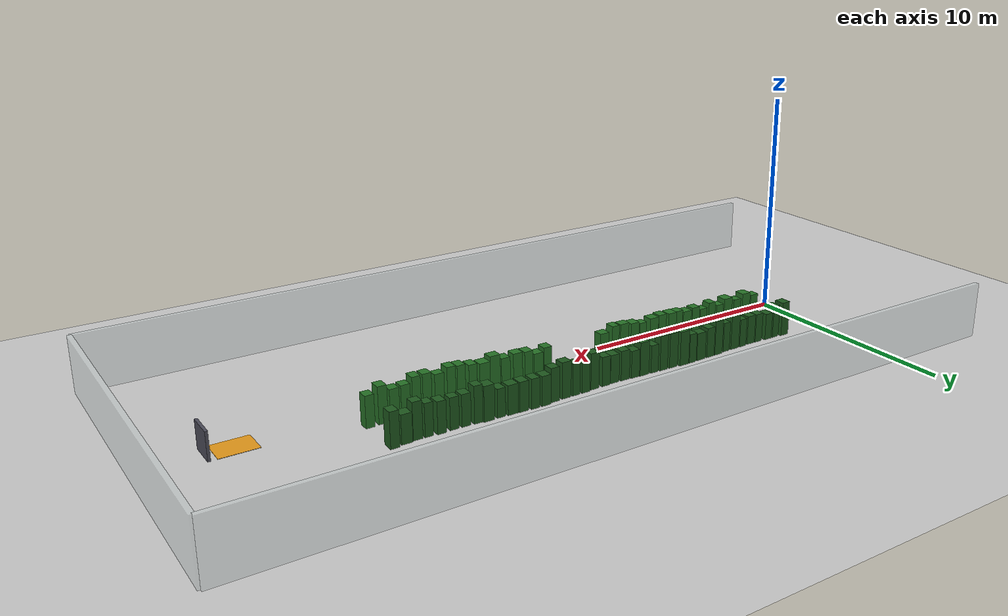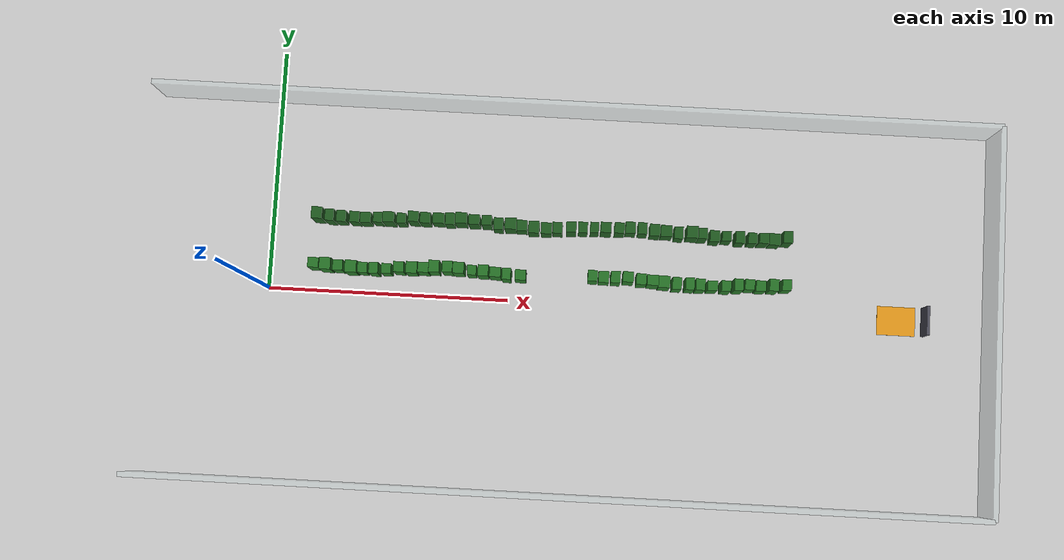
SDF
<sdf version="1.6">
 <world name="default">
  <include><uri>model://ground_plane</uri></include>
  <include><uri>model://sun</uri></include>
  <model name="crop_row_2">
   <static>true</static>
   <link name="row">
    <collision name="c0">
     <pose>1.967 1.024 0.651 0 0 0</pose>
     <geometry><box><size>0.446 0.407 1.302</size></box></geometry>
    </collision>
    <visual name="v0">
     <pose>1.967 1.024 0.651 0 0 0</pose>
     <geometry><box><size>0.446 0.407 1.302</size></box></geometry>
     <material><ambient>0.15 0.45 0.15 1</ambient><diffuse>0.15 0.45 0.15 1</diffuse></material>
    </visual>
    <collision name="c1">
     <pose>2.479 0.996 0.734 0 0 0</pose>
     <geometry><box><size>0.463 0.484 1.468</size></box></geometry>
    </collision>
    <visual name="v1">
     <pose>2.479 0.996 0.734 0 0 0</pose>
     <geometry><box><size>0.463 0.484 1.468</size></box></geometry>
     <material><ambient>0.15 0.45 0.15 1</ambient><diffuse>0.15 0.45 0.15 1</diffuse></material>
    </visual>
    <collision name="c2">
     <pose>2.981 0.973 0.632 0 0 0</pose>
     <geometry><box><size>0.410 0.429 1.263</size></box></geometry>
    </collision>
    <visual name="v2">
     <pose>2.981 0.973 0.632 0 0 0</pose>
     <geometry><box><size>0.410 0.429 1.263</size></box></geometry>
     <material><ambient>0.15 0.45 0.15 1</ambient><diffuse>0.15 0.45 0.15 1</diffuse></material>
    </visual>
    <collision name="c3">
     <pose>3.537 0.938 0.709 0 0 0</pose>
     <geometry><box><size>0.476 0.496 1.419</size></box></geometry>
    </collision>
    <visual name="v3">
     <pose>3.537 0.938 0.709 0 0 0</pose>
     <geometry><box><size>0.476 0.496 1.419</size></box></geometry>
     <material><ambient>0.15 0.45 0.15 1</ambient><diffuse>0.15 0.45 0.15 1</diffuse></material>
    </visual>
    <collision name="c4">
     <pose>3.998 0.938 0.600 0 0 0</pose>
     <geometry><box><size>0.396 0.431 1.200</size></box></geometry>
    </collision>
    <visual name="v4">
     <pose>3.998 0.938 0.600 0 0 0</pose>
     <geometry><box><size>0.396 0.431 1.200</size></box></geometry>
     <material><ambient>0.15 0.45 0.15 1</ambient><diffuse>0.15 0.45 0.15 1</diffuse></material>
    </visual>
    <collision name="c5">
     <pose>4.481 0.922 0.701 0 0 0</pose>
     <geometry><box><size>0.376 0.450 1.402</size></box></geometry>
    </collision>
    <visual name="v5">
     <pose>4.481 0.922 0.701 0 0 0</pose>
     <geometry><box><size>0.376 0.450 1.402</size></box></geometry>
     <material><ambient>0.15 0.45 0.15 1</ambient><diffuse>0.15 0.45 0.15 1</diffuse></material>
    </visual>
    <collision name="c6">
     <pose>4.984 0.945 0.608 0 0 0</pose>
     <geometry><box><size>0.402 0.409 1.217</size></box></geometry>
    </collision>
    <visual name="v6">
     <pose>4.984 0.945 0.608 0 0 0</pose>
     <geometry><box><size>0.402 0.409 1.217</size></box></geometry>
     <material><ambient>0.15 0.45 0.15 1</ambient><diffuse>0.15 0.45 0.15 1</diffuse></material>
    </visual>
    <collision name="c7">
     <pose>5.513 1.021 0.706 0 0 0</pose>
     <geometry><box><size>0.426 0.423 1.412</size></box></geometry>
    </collision>
    <visual name="v7">
     <pose>5.513 1.021 0.706 0 0 0</pose>
     <geometry><box><size>0.426 0.423 1.412</size></box></geometry>
     <material><ambient>0.15 0.45 0.15 1</ambient><diffuse>0.15 0.45 0.15 1</diffuse></material>
    </visual>
    <collision name="c8">
     <pose>6.039 1.031 0.678 0 0 0</pose>
     <geometry><box><size>0.464 0.472 1.356</size></box></geometry>
    </collision>
    <visual name="v8">
     <pose>6.039 1.031 0.678 0 0 0</pose>
     <geometry><box><size>0.464 0.472 1.356</size></box></geometry>
     <material><ambient>0.15 0.45 0.15 1</ambient><diffuse>0.15 0.45 0.15 1</diffuse></material>
    </visual>
    <collision name="c9">
     <pose>6.527 1.046 0.729 0 0 0</pose>
     <geometry><box><size>0.444 0.415 1.457</size></box></geometry>
    </collision>
    <visual name="v9">
     <pose>6.527 1.046 0.729 0 0 0</pose>
     <geometry><box><size>0.444 0.415 1.457</size></box></geometry>
     <material><ambient>0.15 0.45 0.15 1</ambient><diffuse>0.15 0.45 0.15 1</diffuse></material>
    </visual>
    <collision name="c10">
     <pose>6.971 1.115 0.747 0 0 0</pose>
     <geometry><box><size>0.432 0.489 1.494</size></box></geometry>
    </collision>
    <visual name="v10">
     <pose>6.971 1.115 0.747 0 0 0</pose>
     <geometry><box><size>0.432 0.489 1.494</size></box></geometry>
     <material><ambient>0.15 0.45 0.15 1</ambient><diffuse>0.15 0.45 0.15 1</diffuse></material>
    </visual>
    <collision name="c11">
     <pose>7.526 1.123 0.767 0 0 0</pose>
     <geometry><box><size>0.416 0.452 1.534</size></box></geometry>
    </collision>
    <visual name="v11">
     <pose>7.526 1.123 0.767 0 0 0</pose>
     <geometry><box><size>0.416 0.452 1.534</size></box></geometry>
     <material><ambient>0.15 0.45 0.15 1</ambient><diffuse>0.15 0.45 0.15 1</diffuse></material>
    </visual>
    <collision name="c12">
     <pose>7.978 1.109 0.737 0 0 0</pose>
     <geometry><box><size>0.466 0.458 1.473</size></box></geometry>
    </collision>
    <visual name="v12">
     <pose>7.978 1.109 0.737 0 0 0</pose>
     <geometry><box><size>0.466 0.458 1.473</size></box></geometry>
     <material><ambient>0.15 0.45 0.15 1</ambient><diffuse>0.15 0.45 0.15 1</diffuse></material>
    </visual>
    <collision name="c13">
     <pose>8.527 1.053 0.672 0 0 0</pose>
     <geometry><box><size>0.367 0.403 1.344</size></box></geometry>
    </collision>
    <visual name="v13">
     <pose>8.527 1.053 0.672 0 0 0</pose>
     <geometry><box><size>0.367 0.403 1.344</size></box></geometry>
     <material><ambient>0.15 0.45 0.15 1</ambient><diffuse>0.15 0.45 0.15 1</diffuse></material>
    </visual>
    <collision name="c14">
     <pose>8.999 1.055 0.725 0 0 0</pose>
     <geometry><box><size>0.432 0.456 1.450</size></box></geometry>
    </collision>
    <visual name="v14">
     <pose>8.999 1.055 0.725 0 0 0</pose>
     <geometry><box><size>0.432 0.456 1.450</size></box></geometry>
     <material><ambient>0.15 0.45 0.15 1</ambient><diffuse>0.15 0.45 0.15 1</diffuse></material>
    </visual>
    <collision name="c15">
     <pose>9.503 1.009 0.750 0 0 0</pose>
     <geometry><box><size>0.454 0.400 1.499</size></box></geometry>
    </collision>
    <visual name="v15">
     <pose>9.503 1.009 0.750 0 0 0</pose>
     <geometry><box><size>0.454 0.400 1.499</size></box></geometry>
     <material><ambient>0.15 0.45 0.15 1</ambient><diffuse>0.15 0.45 0.15 1</diffuse></material>
    </visual>
    <collision name="c16">
     <pose>9.966 0.962 0.747 0 0 0</pose>
     <geometry><box><size>0.359 0.466 1.495</size></box></geometry>
    </collision>
    <visual name="v16">
     <pose>9.966 0.962 0.747 0 0 0</pose>
     <geometry><box><size>0.359 0.466 1.495</size></box></geometry>
     <material><ambient>0.15 0.45 0.15 1</ambient><diffuse>0.15 0.45 0.15 1</diffuse></material>
    </visual>
    <collision name="c17">
     <pose>10.538 0.968 0.641 0 0 0</pose>
     <geometry><box><size>0.445 0.427 1.282</size></box></geometry>
    </collision>
    <visual name="v17">
     <pose>10.538 0.968 0.641 0 0 0</pose>
     <geometry><box><size>0.445 0.427 1.282</size></box></geometry>
     <material><ambient>0.15 0.45 0.15 1</ambient><diffuse>0.15 0.45 0.15 1</diffuse></material>
    </visual>
    <collision name="c18">
     <pose>13.521 1.085 0.696 0 0 0</pose>
     <geometry><box><size>0.400 0.449 1.392</size></box></geometry>
    </collision>
    <visual name="v18">
     <pose>13.521 1.085 0.696 0 0 0</pose>
     <geometry><box><size>0.400 0.449 1.392</size></box></geometry>
     <material><ambient>0.15 0.45 0.15 1</ambient><diffuse>0.15 0.45 0.15 1</diffuse></material>
    </visual>
    <collision name="c19">
     <pose>13.980 1.075 0.615 0 0 0</pose>
     <geometry><box><size>0.434 0.462 1.231</size></box></geometry>
    </collision>
    <visual name="v19">
     <pose>13.980 1.075 0.615 0 0 0</pose>
     <geometry><box><size>0.434 0.462 1.231</size></box></geometry>
     <material><ambient>0.15 0.45 0.15 1</ambient><diffuse>0.15 0.45 0.15 1</diffuse></material>
    </visual>
    <collision name="c20">
     <pose>14.465 1.076 0.714 0 0 0</pose>
     <geometry><box><size>0.390 0.474 1.427</size></box></geometry>
    </collision>
    <visual name="v20">
     <pose>14.465 1.076 0.714 0 0 0</pose>
     <geometry><box><size>0.390 0.474 1.427</size></box></geometry>
     <material><ambient>0.15 0.45 0.15 1</ambient><diffuse>0.15 0.45 0.15 1</diffuse></material>
    </visual>
    <collision name="c21">
     <pose>14.983 1.108 0.738 0 0 0</pose>
     <geometry><box><size>0.437 0.427 1.477</size></box></geometry>
    </collision>
    <visual name="v21">
     <pose>14.983 1.108 0.738 0 0 0</pose>
     <geometry><box><size>0.437 0.427 1.477</size></box></geometry>
     <material><ambient>0.15 0.45 0.15 1</ambient><diffuse>0.15 0.45 0.15 1</diffuse></material>
    </visual>
    <collision name="c22">
     <pose>15.531 1.053 0.693 0 0 0</pose>
     <geometry><box><size>0.410 0.452 1.387</size></box></geometry>
    </collision>
    <visual name="v22">
     <pose>15.531 1.053 0.693 0 0 0</pose>
     <geometry><box><size>0.410 0.452 1.387</size></box></geometry>
     <material><ambient>0.15 0.45 0.15 1</ambient><diffuse>0.15 0.45 0.15 1</diffuse></material>
    </visual>
    <collision name="c23">
     <pose>15.997 1.016 0.787 0 0 0</pose>
     <geometry><box><size>0.477 0.420 1.575</size></box></geometry>
    </collision>
    <visual name="v23">
     <pose>15.997 1.016 0.787 0 0 0</pose>
     <geometry><box><size>0.477 0.420 1.575</size></box></geometry>
     <material><ambient>0.15 0.45 0.15 1</ambient><diffuse>0.15 0.45 0.15 1</diffuse></material>
    </visual>
    <collision name="c24">
     <pose>16.477 0.995 0.690 0 0 0</pose>
     <geometry><box><size>0.476 0.482 1.380</size></box></geometry>
    </collision>
    <visual name="v24">
     <pose>16.477 0.995 0.690 0 0 0</pose>
     <geometry><box><size>0.476 0.482 1.380</size></box></geometry>
     <material><ambient>0.15 0.45 0.15 1</ambient><diffuse>0.15 0.45 0.15 1</diffuse></material>
    </visual>
    <collision name="c25">
     <pose>17.002 0.955 0.716 0 0 0</pose>
     <geometry><box><size>0.377 0.495 1.433</size></box></geometry>
    </collision>
    <visual name="v25">
     <pose>17.002 0.955 0.716 0 0 0</pose>
     <geometry><box><size>0.377 0.495 1.433</size></box></geometry>
     <material><ambient>0.15 0.45 0.15 1</ambient><diffuse>0.15 0.45 0.15 1</diffuse></material>
    </visual>
    <collision name="c26">
     <pose>17.531 0.954 0.764 0 0 0</pose>
     <geometry><box><size>0.367 0.495 1.528</size></box></geometry>
    </collision>
    <visual name="v26">
     <pose>17.531 0.954 0.764 0 0 0</pose>
     <geometry><box><size>0.367 0.495 1.528</size></box></geometry>
     <material><ambient>0.15 0.45 0.15 1</ambient><diffuse>0.15 0.45 0.15 1</diffuse></material>
    </visual>
    <collision name="c27">
     <pose>17.962 0.944 0.780 0 0 0</pose>
     <geometry><box><size>0.380 0.470 1.559</size></box></geometry>
    </collision>
    <visual name="v27">
     <pose>17.962 0.944 0.780 0 0 0</pose>
     <geometry><box><size>0.380 0.470 1.559</size></box></geometry>
     <material><ambient>0.15 0.45 0.15 1</ambient><diffuse>0.15 0.45 0.15 1</diffuse></material>
    </visual>
    <collision name="c28">
     <pose>18.471 0.940 0.690 0 0 0</pose>
     <geometry><box><size>0.414 0.400 1.380</size></box></geometry>
    </collision>
    <visual name="v28">
     <pose>18.471 0.940 0.690 0 0 0</pose>
     <geometry><box><size>0.414 0.400 1.380</size></box></geometry>
     <material><ambient>0.15 0.45 0.15 1</ambient><diffuse>0.15 0.45 0.15 1</diffuse></material>
    </visual>
    <collision name="c29">
     <pose>19.020 0.944 0.768 0 0 0</pose>
     <geometry><box><size>0.391 0.434 1.536</size></box></geometry>
    </collision>
    <visual name="v29">
     <pose>19.020 0.944 0.768 0 0 0</pose>
     <geometry><box><size>0.391 0.434 1.536</size></box></geometry>
     <material><ambient>0.15 0.45 0.15 1</ambient><diffuse>0.15 0.45 0.15 1</diffuse></material>
    </visual>
    <collision name="c30">
     <pose>19.532 1.018 0.785 0 0 0</pose>
     <geometry><box><size>0.366 0.484 1.571</size></box></geometry>
    </collision>
    <visual name="v30">
     <pose>19.532 1.018 0.785 0 0 0</pose>
     <geometry><box><size>0.366 0.484 1.571</size></box></geometry>
     <material><ambient>0.15 0.45 0.15 1</ambient><diffuse>0.15 0.45 0.15 1</diffuse></material>
    </visual>
    <collision name="c31">
     <pose>20.007 1.071 0.679 0 0 0</pose>
     <geometry><box><size>0.398 0.429 1.357</size></box></geometry>
    </collision>
    <visual name="v31">
     <pose>20.007 1.071 0.679 0 0 0</pose>
     <geometry><box><size>0.398 0.429 1.357</size></box></geometry>
     <material><ambient>0.15 0.45 0.15 1</ambient><diffuse>0.15 0.45 0.15 1</diffuse></material>
    </visual>
    <collision name="c32">
     <pose>20.468 1.046 0.655 0 0 0</pose>
     <geometry><box><size>0.406 0.436 1.310</size></box></geometry>
    </collision>
    <visual name="v32">
     <pose>20.468 1.046 0.655 0 0 0</pose>
     <geometry><box><size>0.406 0.436 1.310</size></box></geometry>
     <material><ambient>0.15 0.45 0.15 1</ambient><diffuse>0.15 0.45 0.15 1</diffuse></material>
    </visual>
    <collision name="c33">
     <pose>20.981 1.081 0.787 0 0 0</pose>
     <geometry><box><size>0.387 0.483 1.574</size></box></geometry>
    </collision>
    <visual name="v33">
     <pose>20.981 1.081 0.787 0 0 0</pose>
     <geometry><box><size>0.387 0.483 1.574</size></box></geometry>
     <material><ambient>0.15 0.45 0.15 1</ambient><diffuse>0.15 0.45 0.15 1</diffuse></material>
    </visual>
    <collision name="c34">
     <pose>21.531 1.132 0.675 0 0 0</pose>
     <geometry><box><size>0.375 0.451 1.349</size></box></geometry>
    </collision>
    <visual name="v34">
     <pose>21.531 1.132 0.675 0 0 0</pose>
     <geometry><box><size>0.375 0.451 1.349</size></box></geometry>
     <material><ambient>0.15 0.45 0.15 1</ambient><diffuse>0.15 0.45 0.15 1</diffuse></material>
    </visual>
   </link>
  </model>
  <model name="crop_row_3">
   <static>true</static>
   <link name="row">
    <collision name="c0">
     <pose>2.004 3.068 0.783 0 0 0</pose>
     <geometry><box><size>0.432 0.481 1.565</size></box></geometry>
    </collision>
    <visual name="v0">
     <pose>2.004 3.068 0.783 0 0 0</pose>
     <geometry><box><size>0.432 0.481 1.565</size></box></geometry>
     <material><ambient>0.12 0.35 0.12 1</ambient><diffuse>0.12 0.35 0.12 1</diffuse></material>
    </visual>
    <collision name="c1">
     <pose>2.520 3.013 0.746 0 0 0</pose>
     <geometry><box><size>0.356 0.472 1.493</size></box></geometry>
    </collision>
    <visual name="v1">
     <pose>2.520 3.013 0.746 0 0 0</pose>
     <geometry><box><size>0.356 0.472 1.493</size></box></geometry>
     <material><ambient>0.12 0.35 0.12 1</ambient><diffuse>0.12 0.35 0.12 1</diffuse></material>
    </visual>
    <collision name="c2">
     <pose>2.970 3.026 0.610 0 0 0</pose>
     <geometry><box><size>0.387 0.464 1.220</size></box></geometry>
    </collision>
    <visual name="v2">
     <pose>2.970 3.026 0.610 0 0 0</pose>
     <geometry><box><size>0.387 0.464 1.220</size></box></geometry>
     <material><ambient>0.12 0.35 0.12 1</ambient><diffuse>0.12 0.35 0.12 1</diffuse></material>
    </visual>
    <collision name="c3">
     <pose>3.538 3.009 0.660 0 0 0</pose>
     <geometry><box><size>0.395 0.447 1.319</size></box></geometry>
    </collision>
    <visual name="v3">
     <pose>3.538 3.009 0.660 0 0 0</pose>
     <geometry><box><size>0.395 0.447 1.319</size></box></geometry>
     <material><ambient>0.12 0.35 0.12 1</ambient><diffuse>0.12 0.35 0.12 1</diffuse></material>
    </visual>
    <collision name="c4">
     <pose>3.992 3.006 0.660 0 0 0</pose>
     <geometry><box><size>0.435 0.426 1.320</size></box></geometry>
    </collision>
    <visual name="v4">
     <pose>3.992 3.006 0.660 0 0 0</pose>
     <geometry><box><size>0.435 0.426 1.320</size></box></geometry>
     <material><ambient>0.12 0.35 0.12 1</ambient><diffuse>0.12 0.35 0.12 1</diffuse></material>
    </visual>
    <collision name="c5">
     <pose>4.500 3.045 0.642 0 0 0</pose>
     <geometry><box><size>0.371 0.417 1.283</size></box></geometry>
    </collision>
    <visual name="v5">
     <pose>4.500 3.045 0.642 0 0 0</pose>
     <geometry><box><size>0.371 0.417 1.283</size></box></geometry>
     <material><ambient>0.12 0.35 0.12 1</ambient><diffuse>0.12 0.35 0.12 1</diffuse></material>
    </visual>
    <collision name="c6">
     <pose>4.971 3.044 0.799 0 0 0</pose>
     <geometry><box><size>0.468 0.422 1.599</size></box></geometry>
    </collision>
    <visual name="v6">
     <pose>4.971 3.044 0.799 0 0 0</pose>
     <geometry><box><size>0.468 0.422 1.599</size></box></geometry>
     <material><ambient>0.12 0.35 0.12 1</ambient><diffuse>0.12 0.35 0.12 1</diffuse></material>
    </visual>
    <collision name="c7">
     <pose>5.479 3.053 0.668 0 0 0</pose>
     <geometry><box><size>0.362 0.419 1.337</size></box></geometry>
    </collision>
    <visual name="v7">
     <pose>5.479 3.053 0.668 0 0 0</pose>
     <geometry><box><size>0.362 0.419 1.337</size></box></geometry>
     <material><ambient>0.12 0.35 0.12 1</ambient><diffuse>0.12 0.35 0.12 1</diffuse></material>
    </visual>
    <collision name="c8">
     <pose>5.993 3.123 0.777 0 0 0</pose>
     <geometry><box><size>0.424 0.426 1.555</size></box></geometry>
    </collision>
    <visual name="v8">
     <pose>5.993 3.123 0.777 0 0 0</pose>
     <geometry><box><size>0.424 0.426 1.555</size></box></geometry>
     <material><ambient>0.12 0.35 0.12 1</ambient><diffuse>0.12 0.35 0.12 1</diffuse></material>
    </visual>
    <collision name="c9">
     <pose>6.465 3.124 0.675 0 0 0</pose>
     <geometry><box><size>0.418 0.441 1.351</size></box></geometry>
    </collision>
    <visual name="v9">
     <pose>6.465 3.124 0.675 0 0 0</pose>
     <geometry><box><size>0.418 0.441 1.351</size></box></geometry>
     <material><ambient>0.12 0.35 0.12 1</ambient><diffuse>0.12 0.35 0.12 1</diffuse></material>
    </visual>
    <collision name="c10">
     <pose>7.010 3.150 0.625 0 0 0</pose>
     <geometry><box><size>0.476 0.428 1.250</size></box></geometry>
    </collision>
    <visual name="v10">
     <pose>7.010 3.150 0.625 0 0 0</pose>
     <geometry><box><size>0.476 0.428 1.250</size></box></geometry>
     <material><ambient>0.12 0.35 0.12 1</ambient><diffuse>0.12 0.35 0.12 1</diffuse></material>
    </visual>
    <collision name="c11">
     <pose>7.492 3.140 0.654 0 0 0</pose>
     <geometry><box><size>0.378 0.486 1.308</size></box></geometry>
    </collision>
    <visual name="v11">
     <pose>7.492 3.140 0.654 0 0 0</pose>
     <geometry><box><size>0.378 0.486 1.308</size></box></geometry>
     <material><ambient>0.12 0.35 0.12 1</ambient><diffuse>0.12 0.35 0.12 1</diffuse></material>
    </visual>
    <collision name="c12">
     <pose>7.962 3.170 0.770 0 0 0</pose>
     <geometry><box><size>0.474 0.445 1.539</size></box></geometry>
    </collision>
    <visual name="v12">
     <pose>7.962 3.170 0.770 0 0 0</pose>
     <geometry><box><size>0.474 0.445 1.539</size></box></geometry>
     <material><ambient>0.12 0.35 0.12 1</ambient><diffuse>0.12 0.35 0.12 1</diffuse></material>
    </visual>
    <collision name="c13">
     <pose>8.507 3.128 0.779 0 0 0</pose>
     <geometry><box><size>0.442 0.403 1.558</size></box></geometry>
    </collision>
    <visual name="v13">
     <pose>8.507 3.128 0.779 0 0 0</pose>
     <geometry><box><size>0.442 0.403 1.558</size></box></geometry>
     <material><ambient>0.12 0.35 0.12 1</ambient><diffuse>0.12 0.35 0.12 1</diffuse></material>
    </visual>
    <collision name="c14">
     <pose>9.028 3.122 0.785 0 0 0</pose>
     <geometry><box><size>0.401 0.400 1.571</size></box></geometry>
    </collision>
    <visual name="v14">
     <pose>9.028 3.122 0.785 0 0 0</pose>
     <geometry><box><size>0.401 0.400 1.571</size></box></geometry>
     <material><ambient>0.12 0.35 0.12 1</ambient><diffuse>0.12 0.35 0.12 1</diffuse></material>
    </visual>
    <collision name="c15">
     <pose>9.502 3.051 0.622 0 0 0</pose>
     <geometry><box><size>0.382 0.497 1.244</size></box></geometry>
    </collision>
    <visual name="v15">
     <pose>9.502 3.051 0.622 0 0 0</pose>
     <geometry><box><size>0.382 0.497 1.244</size></box></geometry>
     <material><ambient>0.12 0.35 0.12 1</ambient><diffuse>0.12 0.35 0.12 1</diffuse></material>
    </visual>
    <collision name="c16">
     <pose>10.021 3.051 0.744 0 0 0</pose>
     <geometry><box><size>0.472 0.468 1.489</size></box></geometry>
    </collision>
    <visual name="v16">
     <pose>10.021 3.051 0.744 0 0 0</pose>
     <geometry><box><size>0.472 0.468 1.489</size></box></geometry>
     <material><ambient>0.12 0.35 0.12 1</ambient><diffuse>0.12 0.35 0.12 1</diffuse></material>
    </visual>
    <collision name="c17">
     <pose>10.479 3.033 0.608 0 0 0</pose>
     <geometry><box><size>0.422 0.446 1.216</size></box></geometry>
    </collision>
    <visual name="v17">
     <pose>10.479 3.033 0.608 0 0 0</pose>
     <geometry><box><size>0.422 0.446 1.216</size></box></geometry>
     <material><ambient>0.12 0.35 0.12 1</ambient><diffuse>0.12 0.35 0.12 1</diffuse></material>
    </visual>
    <collision name="c18">
     <pose>10.980 2.978 0.661 0 0 0</pose>
     <geometry><box><size>0.434 0.492 1.322</size></box></geometry>
    </collision>
    <visual name="v18">
     <pose>10.980 2.978 0.661 0 0 0</pose>
     <geometry><box><size>0.434 0.492 1.322</size></box></geometry>
     <material><ambient>0.12 0.35 0.12 1</ambient><diffuse>0.12 0.35 0.12 1</diffuse></material>
    </visual>
    <collision name="c19">
     <pose>11.502 2.969 0.622 0 0 0</pose>
     <geometry><box><size>0.441 0.464 1.245</size></box></geometry>
    </collision>
    <visual name="v19">
     <pose>11.502 2.969 0.622 0 0 0</pose>
     <geometry><box><size>0.441 0.464 1.245</size></box></geometry>
     <material><ambient>0.12 0.35 0.12 1</ambient><diffuse>0.12 0.35 0.12 1</diffuse></material>
    </visual>
    <collision name="c20">
     <pose>11.961 3.008 0.645 0 0 0</pose>
     <geometry><box><size>0.400 0.458 1.289</size></box></geometry>
    </collision>
    <visual name="v20">
     <pose>11.961 3.008 0.645 0 0 0</pose>
     <geometry><box><size>0.400 0.458 1.289</size></box></geometry>
     <material><ambient>0.12 0.35 0.12 1</ambient><diffuse>0.12 0.35 0.12 1</diffuse></material>
    </visual>
    <collision name="c21">
     <pose>12.531 3.029 0.792 0 0 0</pose>
     <geometry><box><size>0.410 0.430 1.584</size></box></geometry>
    </collision>
    <visual name="v21">
     <pose>12.531 3.029 0.792 0 0 0</pose>
     <geometry><box><size>0.410 0.430 1.584</size></box></geometry>
     <material><ambient>0.12 0.35 0.12 1</ambient><diffuse>0.12 0.35 0.12 1</diffuse></material>
    </visual>
    <collision name="c22">
     <pose>13.016 3.075 0.649 0 0 0</pose>
     <geometry><box><size>0.381 0.448 1.299</size></box></geometry>
    </collision>
    <visual name="v22">
     <pose>13.016 3.075 0.649 0 0 0</pose>
     <geometry><box><size>0.381 0.448 1.299</size></box></geometry>
     <material><ambient>0.12 0.35 0.12 1</ambient><diffuse>0.12 0.35 0.12 1</diffuse></material>
    </visual>
    <collision name="c23">
     <pose>13.494 3.088 0.700 0 0 0</pose>
     <geometry><box><size>0.353 0.431 1.399</size></box></geometry>
    </collision>
    <visual name="v23">
     <pose>13.494 3.088 0.700 0 0 0</pose>
     <geometry><box><size>0.353 0.431 1.399</size></box></geometry>
     <material><ambient>0.12 0.35 0.12 1</ambient><diffuse>0.12 0.35 0.12 1</diffuse></material>
    </visual>
    <collision name="c24">
     <pose>13.963 3.092 0.785 0 0 0</pose>
     <geometry><box><size>0.437 0.426 1.570</size></box></geometry>
    </collision>
    <visual name="v24">
     <pose>13.963 3.092 0.785 0 0 0</pose>
     <geometry><box><size>0.437 0.426 1.570</size></box></geometry>
     <material><ambient>0.12 0.35 0.12 1</ambient><diffuse>0.12 0.35 0.12 1</diffuse></material>
    </visual>
    <collision name="c25">
     <pose>14.524 3.115 0.737 0 0 0</pose>
     <geometry><box><size>0.405 0.434 1.473</size></box></geometry>
    </collision>
    <visual name="v25">
     <pose>14.524 3.115 0.737 0 0 0</pose>
     <geometry><box><size>0.405 0.434 1.473</size></box></geometry>
     <material><ambient>0.12 0.35 0.12 1</ambient><diffuse>0.12 0.35 0.12 1</diffuse></material>
    </visual>
    <collision name="c26">
     <pose>14.985 3.178 0.641 0 0 0</pose>
     <geometry><box><size>0.416 0.474 1.282</size></box></geometry>
    </collision>
    <visual name="v26">
     <pose>14.985 3.178 0.641 0 0 0</pose>
     <geometry><box><size>0.416 0.474 1.282</size></box></geometry>
     <material><ambient>0.12 0.35 0.12 1</ambient><diffuse>0.12 0.35 0.12 1</diffuse></material>
    </visual>
    <collision name="c27">
     <pose>15.484 3.171 0.644 0 0 0</pose>
     <geometry><box><size>0.380 0.482 1.289</size></box></geometry>
    </collision>
    <visual name="v27">
     <pose>15.484 3.171 0.644 0 0 0</pose>
     <geometry><box><size>0.380 0.482 1.289</size></box></geometry>
     <material><ambient>0.12 0.35 0.12 1</ambient><diffuse>0.12 0.35 0.12 1</diffuse></material>
    </visual>
    <collision name="c28">
     <pose>15.993 3.131 0.637 0 0 0</pose>
     <geometry><box><size>0.414 0.495 1.275</size></box></geometry>
    </collision>
    <visual name="v28">
     <pose>15.993 3.131 0.637 0 0 0</pose>
     <geometry><box><size>0.414 0.495 1.275</size></box></geometry>
     <material><ambient>0.12 0.35 0.12 1</ambient><diffuse>0.12 0.35 0.12 1</diffuse></material>
    </visual>
    <collision name="c29">
     <pose>16.477 3.123 0.629 0 0 0</pose>
     <geometry><box><size>0.473 0.467 1.259</size></box></geometry>
    </collision>
    <visual name="v29">
     <pose>16.477 3.123 0.629 0 0 0</pose>
     <geometry><box><size>0.473 0.467 1.259</size></box></geometry>
     <material><ambient>0.12 0.35 0.12 1</ambient><diffuse>0.12 0.35 0.12 1</diffuse></material>
    </visual>
    <collision name="c30">
     <pose>16.991 3.077 0.610 0 0 0</pose>
     <geometry><box><size>0.368 0.497 1.221</size></box></geometry>
    </collision>
    <visual name="v30">
     <pose>16.991 3.077 0.610 0 0 0</pose>
     <geometry><box><size>0.368 0.497 1.221</size></box></geometry>
     <material><ambient>0.12 0.35 0.12 1</ambient><diffuse>0.12 0.35 0.12 1</diffuse></material>
    </visual>
    <collision name="c31">
     <pose>17.535 3.102 0.747 0 0 0</pose>
     <geometry><box><size>0.465 0.490 1.493</size></box></geometry>
    </collision>
    <visual name="v31">
     <pose>17.535 3.102 0.747 0 0 0</pose>
     <geometry><box><size>0.465 0.490 1.493</size></box></geometry>
     <material><ambient>0.12 0.35 0.12 1</ambient><diffuse>0.12 0.35 0.12 1</diffuse></material>
    </visual>
    <collision name="c32">
     <pose>17.963 3.056 0.787 0 0 0</pose>
     <geometry><box><size>0.374 0.433 1.574</size></box></geometry>
    </collision>
    <visual name="v32">
     <pose>17.963 3.056 0.787 0 0 0</pose>
     <geometry><box><size>0.374 0.433 1.574</size></box></geometry>
     <material><ambient>0.12 0.35 0.12 1</ambient><diffuse>0.12 0.35 0.12 1</diffuse></material>
    </visual>
    <collision name="c33">
     <pose>18.474 3.006 0.675 0 0 0</pose>
     <geometry><box><size>0.399 0.466 1.350</size></box></geometry>
    </collision>
    <visual name="v33">
     <pose>18.474 3.006 0.675 0 0 0</pose>
     <geometry><box><size>0.399 0.466 1.350</size></box></geometry>
     <material><ambient>0.12 0.35 0.12 1</ambient><diffuse>0.12 0.35 0.12 1</diffuse></material>
    </visual>
    <collision name="c34">
     <pose>18.970 3.027 0.670 0 0 0</pose>
     <geometry><box><size>0.386 0.400 1.341</size></box></geometry>
    </collision>
    <visual name="v34">
     <pose>18.970 3.027 0.670 0 0 0</pose>
     <geometry><box><size>0.386 0.400 1.341</size></box></geometry>
     <material><ambient>0.12 0.35 0.12 1</ambient><diffuse>0.12 0.35 0.12 1</diffuse></material>
    </visual>
    <collision name="c35">
     <pose>19.526 3.014 0.671 0 0 0</pose>
     <geometry><box><size>0.377 0.496 1.343</size></box></geometry>
    </collision>
    <visual name="v35">
     <pose>19.526 3.014 0.671 0 0 0</pose>
     <geometry><box><size>0.377 0.496 1.343</size></box></geometry>
     <material><ambient>0.12 0.35 0.12 1</ambient><diffuse>0.12 0.35 0.12 1</diffuse></material>
    </visual>
    <collision name="c36">
     <pose>20.034 2.995 0.695 0 0 0</pose>
     <geometry><box><size>0.356 0.443 1.389</size></box></geometry>
    </collision>
    <visual name="v36">
     <pose>20.034 2.995 0.695 0 0 0</pose>
     <geometry><box><size>0.356 0.443 1.389</size></box></geometry>
     <material><ambient>0.12 0.35 0.12 1</ambient><diffuse>0.12 0.35 0.12 1</diffuse></material>
    </visual>
    <collision name="c37">
     <pose>20.493 2.992 0.779 0 0 0</pose>
     <geometry><box><size>0.397 0.419 1.559</size></box></geometry>
    </collision>
    <visual name="v37">
     <pose>20.493 2.992 0.779 0 0 0</pose>
     <geometry><box><size>0.397 0.419 1.559</size></box></geometry>
     <material><ambient>0.12 0.35 0.12 1</ambient><diffuse>0.12 0.35 0.12 1</diffuse></material>
    </visual>
    <collision name="c38">
     <pose>20.965 3.019 0.608 0 0 0</pose>
     <geometry><box><size>0.450 0.481 1.216</size></box></geometry>
    </collision>
    <visual name="v38">
     <pose>20.965 3.019 0.608 0 0 0</pose>
     <geometry><box><size>0.450 0.481 1.216</size></box></geometry>
     <material><ambient>0.12 0.35 0.12 1</ambient><diffuse>0.12 0.35 0.12 1</diffuse></material>
    </visual>
    <collision name="c39">
     <pose>21.487 3.102 0.749 0 0 0</pose>
     <geometry><box><size>0.383 0.492 1.499</size></box></geometry>
    </collision>
    <visual name="v39">
     <pose>21.487 3.102 0.749 0 0 0</pose>
     <geometry><box><size>0.383 0.492 1.499</size></box></geometry>
     <material><ambient>0.12 0.35 0.12 1</ambient><diffuse>0.12 0.35 0.12 1</diffuse></material>
    </visual>
   </link>
  </model>
  <model name="charging_pad">
   <static>true</static>
   <pose>26.3 0.0 0.01 0 0 0</pose>
   <link name="body">
    <visual name="v">
     <geometry><box><size>1.6 1.2 0.02</size></box></geometry>
     <material><ambient>0.9 0.6 0.1 1</ambient><diffuse>0.9 0.6 0.1 1</diffuse></material>
    </visual>
   </link>
  </model>
  <model name="charging_post">
   <static>true</static>
   <pose>27.400000000000002 0.0 0.6 0 0 0</pose>
   <link name="body">
    <collision name="c"><geometry><box><size>0.12 1.2 1.2</size></box></geometry></collision>
    <visual name="v">
     <geometry><box><size>0.12 1.2 1.2</size></box></geometry>
     <material><ambient>0.3 0.3 0.35 1</ambient><diffuse>0.3 0.3 0.35 1</diffuse></material>
    </visual>
   </link>
  </model>
  <model name="wall_far">
   <static>true</static>
   <pose>30.0 0.0 1.25 0 0 0</pose>
   <link name="body">
    <collision name="c"><geometry><box><size>0.2 16.0 2.5</size></box></geometry></collision>
    <visual name="v">
     <geometry><box><size>0.2 16.0 2.5</size></box></geometry>
     <material><ambient>0.8 0.85 0.85 0.4</ambient><diffuse>0.8 0.85 0.85 0.4</diffuse></material>
    </visual>
   </link>
  </model>
  <model name="wall_left">
   <static>true</static>
   <pose>12.5 8.0 1.25 0 0 0</pose>
   <link name="body">
    <collision name="c"><geometry><box><size>35.0 0.2 2.5</size></box></geometry></collision>
    <visual name="v">
     <geometry><box><size>35.0 0.2 2.5</size></box></geometry>
     <material><ambient>0.8 0.85 0.85 0.4</ambient><diffuse>0.8 0.85 0.85 0.4</diffuse></material>
    </visual>
   </link>
  </model>
  <model name="wall_right">
   <static>true</static>
   <pose>12.5 -8.0 1.25 0 0 0</pose>
   <link name="body">
    <collision name="c"><geometry><box><size>35.0 0.2 2.5</size></box></geometry></collision>
    <visual name="v">
     <geometry><box><size>35.0 0.2 2.5</size></box></geometry>
     <material><ambient>0.8 0.85 0.85 0.4</ambient><diffuse>0.8 0.85 0.85 0.4</diffuse></material>
    </visual>
   </link>
  </model>
 </world>
</sdf>
